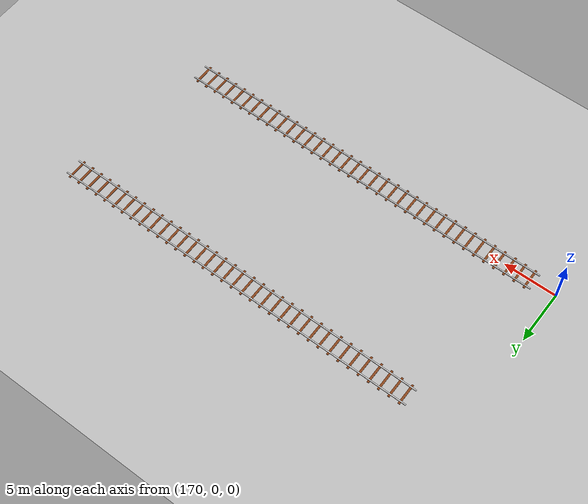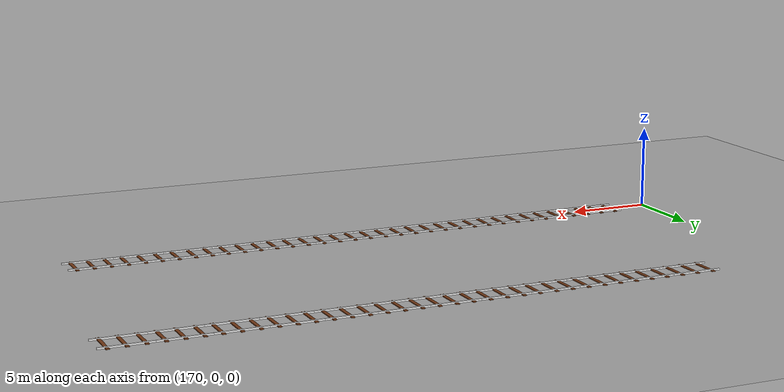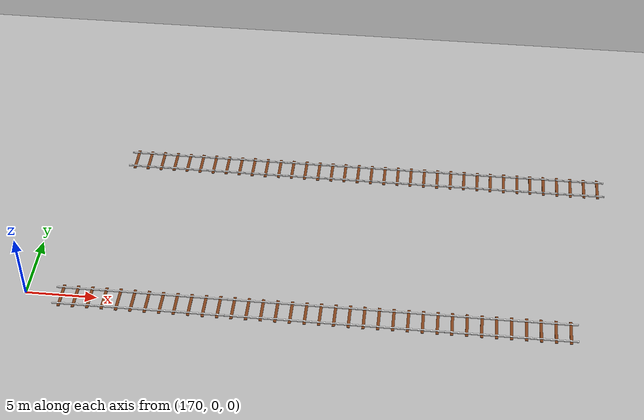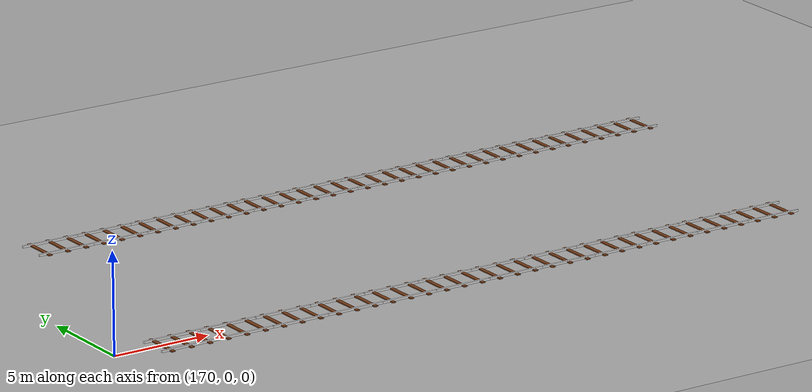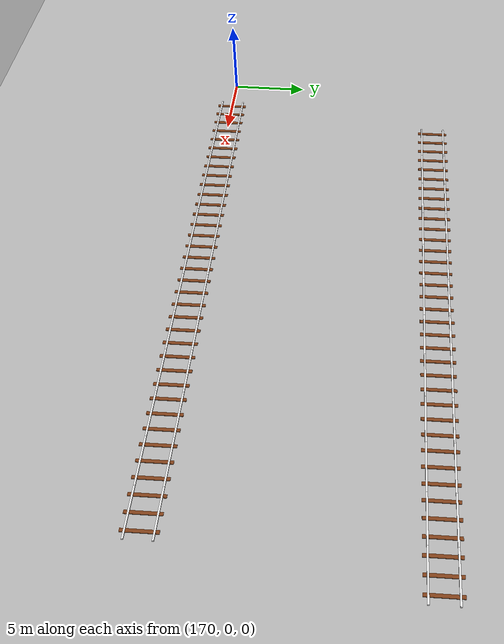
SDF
<sdf version="1.10">
 <world name="myworld">
  <model name="ground_plane">
   <static>true</static>
   <link name="link">
    <collision name="collision">
     <geometry><plane><normal>0 0 1</normal><size>1000 1000</size></plane></geometry>
    </collision>
    <visual name="visual">
     <geometry><plane><normal>0 0 1</normal><size>1000 1000</size></plane></geometry>
     <material>
      <ambient>0.699999988 0.699999988 0.699999988 1</ambient>
      <diffuse>0.699999988 0.699999988 0.699999988 1</diffuse>
     </material>
    </visual>
    <inertial>
     <mass>1</mass>
     <inertia><ixx>1</ixx><ixy>0</ixy><ixz>0</ixz><iyy>1</iyy><iyz>0</iyz><izz>1</izz></inertia>
    </inertial>
   </link>
  </model>
  <model name="rail12_37_10">
   <static>true</static>
   <pose>173.52500000000001 -0.028317800000000001 0 0 0 0</pose>
   <link name="rail_link">
    <visual name="rail_left">
     <pose>0 0.75 0.050000000000000003 0 0 0</pose>
     <geometry><box><size>3 0.10000000000000001 0.10000000000000001</size></box></geometry>
     <material>
      <ambient>0.800000012 0.800000012 0.800000012 1</ambient>
      <diffuse>0.899999976 0.899999976 0.899999976 1</diffuse>
     </material>
    </visual>
    <visual name="rail_right">
     <pose>0 -0.75 0.050000000000000003 0 0 0</pose>
     <geometry><box><size>3 0.10000000000000001 0.10000000000000001</size></box></geometry>
     <material>
      <ambient>0.800000012 0.800000012 0.800000012 1</ambient>
      <diffuse>0.899999976 0.899999976 0.899999976 1</diffuse>
     </material>
    </visual>
    <visual name="traverse_1">
     <pose>1 0 0.025000000000000001 0 0 0</pose>
     <geometry><box><size>0.20000000000000001 2 0.050000000000000003</size></box></geometry>
     <material>
      <ambient>0.400000006 0.200000003 0.100000001 1</ambient>
      <diffuse>0.5 0.25 0.100000001 1</diffuse>
     </material>
    </visual>
    <visual name="traverse_2">
     <pose>0 0 0.025000000000000001 0 0 0</pose>
     <geometry><box><size>0.20000000000000001 2 0.050000000000000003</size></box></geometry>
     <material>
      <ambient>0.400000006 0.200000003 0.100000001 1</ambient>
      <diffuse>0.5 0.25 0.100000001 1</diffuse>
     </material>
    </visual>
    <visual name="traverse_3">
     <pose>-1 0 0.025000000000000001 0 0 0</pose>
     <geometry><box><size>0.20000000000000001 2 0.050000000000000003</size></box></geometry>
     <material>
      <ambient>0.400000006 0.200000003 0.100000001 1</ambient>
      <diffuse>0.5 0.25 0.100000001 1</diffuse>
     </material>
    </visual>
   </link>
  </model>
  <model name="rail12_37_11">
   <static>true</static>
   <pose>176.52600000000001 -0.0236508 0 0 0 0</pose>
   <link name="rail_link">
    <visual name="rail_left">
     <pose>0 0.75 0.050000000000000003 0 0 0</pose>
     <geometry><box><size>3 0.10000000000000001 0.10000000000000001</size></box></geometry>
     <material>
      <ambient>0.800000012 0.800000012 0.800000012 1</ambient>
      <diffuse>0.899999976 0.899999976 0.899999976 1</diffuse>
     </material>
    </visual>
    <visual name="rail_right">
     <pose>0 -0.75 0.050000000000000003 0 0 0</pose>
     <geometry><box><size>3 0.10000000000000001 0.10000000000000001</size></box></geometry>
     <material>
      <ambient>0.800000012 0.800000012 0.800000012 1</ambient>
      <diffuse>0.899999976 0.899999976 0.899999976 1</diffuse>
     </material>
    </visual>
    <visual name="traverse_1">
     <pose>1 0 0.025000000000000001 0 0 0</pose>
     <geometry><box><size>0.20000000000000001 2 0.050000000000000003</size></box></geometry>
     <material>
      <ambient>0.400000006 0.200000003 0.100000001 1</ambient>
      <diffuse>0.5 0.25 0.100000001 1</diffuse>
     </material>
    </visual>
    <visual name="traverse_2">
     <pose>0 0 0.025000000000000001 0 0 0</pose>
     <geometry><box><size>0.20000000000000001 2 0.050000000000000003</size></box></geometry>
     <material>
      <ambient>0.400000006 0.200000003 0.100000001 1</ambient>
      <diffuse>0.5 0.25 0.100000001 1</diffuse>
     </material>
    </visual>
    <visual name="traverse_3">
     <pose>-1 0 0.025000000000000001 0 0 0</pose>
     <geometry><box><size>0.20000000000000001 2 0.050000000000000003</size></box></geometry>
     <material>
      <ambient>0.400000006 0.200000003 0.100000001 1</ambient>
      <diffuse>0.5 0.25 0.100000001 1</diffuse>
     </material>
    </visual>
   </link>
  </model>
  <model name="rail12_37_12">
   <static>true</static>
   <pose>179.524 -0.027465199999999999 0 0 0 0</pose>
   <link name="rail_link">
    <visual name="rail_left">
     <pose>0 0.75 0.050000000000000003 0 0 0</pose>
     <geometry><box><size>3 0.10000000000000001 0.10000000000000001</size></box></geometry>
     <material>
      <ambient>0.800000012 0.800000012 0.800000012 1</ambient>
      <diffuse>0.899999976 0.899999976 0.899999976 1</diffuse>
     </material>
    </visual>
    <visual name="rail_right">
     <pose>0 -0.75 0.050000000000000003 0 0 0</pose>
     <geometry><box><size>3 0.10000000000000001 0.10000000000000001</size></box></geometry>
     <material>
      <ambient>0.800000012 0.800000012 0.800000012 1</ambient>
      <diffuse>0.899999976 0.899999976 0.899999976 1</diffuse>
     </material>
    </visual>
    <visual name="traverse_1">
     <pose>1 0 0.025000000000000001 0 0 0</pose>
     <geometry><box><size>0.20000000000000001 2 0.050000000000000003</size></box></geometry>
     <material>
      <ambient>0.400000006 0.200000003 0.100000001 1</ambient>
      <diffuse>0.5 0.25 0.100000001 1</diffuse>
     </material>
    </visual>
    <visual name="traverse_2">
     <pose>0 0 0.025000000000000001 0 0 0</pose>
     <geometry><box><size>0.20000000000000001 2 0.050000000000000003</size></box></geometry>
     <material>
      <ambient>0.400000006 0.200000003 0.100000001 1</ambient>
      <diffuse>0.5 0.25 0.100000001 1</diffuse>
     </material>
    </visual>
    <visual name="traverse_3">
     <pose>-1 0 0.025000000000000001 0 0 0</pose>
     <geometry><box><size>0.20000000000000001 2 0.050000000000000003</size></box></geometry>
     <material>
      <ambient>0.400000006 0.200000003 0.100000001 1</ambient>
      <diffuse>0.5 0.25 0.100000001 1</diffuse>
     </material>
    </visual>
   </link>
  </model>
  <model name="rail12_37_13">
   <static>true</static>
   <pose>182.52000000000001 -0.028889000000000001 0 0 0 0</pose>
   <link name="rail_link">
    <visual name="rail_left">
     <pose>0 0.75 0.050000000000000003 0 0 0</pose>
     <geometry><box><size>3 0.10000000000000001 0.10000000000000001</size></box></geometry>
     <material>
      <ambient>0.800000012 0.800000012 0.800000012 1</ambient>
      <diffuse>0.899999976 0.899999976 0.899999976 1</diffuse>
     </material>
    </visual>
    <visual name="rail_right">
     <pose>0 -0.75 0.050000000000000003 0 0 0</pose>
     <geometry><box><size>3 0.10000000000000001 0.10000000000000001</size></box></geometry>
     <material>
      <ambient>0.800000012 0.800000012 0.800000012 1</ambient>
      <diffuse>0.899999976 0.899999976 0.899999976 1</diffuse>
     </material>
    </visual>
    <visual name="traverse_1">
     <pose>1 0 0.025000000000000001 0 0 0</pose>
     <geometry><box><size>0.20000000000000001 2 0.050000000000000003</size></box></geometry>
     <material>
      <ambient>0.400000006 0.200000003 0.100000001 1</ambient>
      <diffuse>0.5 0.25 0.100000001 1</diffuse>
     </material>
    </visual>
    <visual name="traverse_2">
     <pose>0 0 0.025000000000000001 0 0 0</pose>
     <geometry><box><size>0.20000000000000001 2 0.050000000000000003</size></box></geometry>
     <material>
      <ambient>0.400000006 0.200000003 0.100000001 1</ambient>
      <diffuse>0.5 0.25 0.100000001 1</diffuse>
     </material>
    </visual>
    <visual name="traverse_3">
     <pose>-1 0 0.025000000000000001 0 0 0</pose>
     <geometry><box><size>0.20000000000000001 2 0.050000000000000003</size></box></geometry>
     <material>
      <ambient>0.400000006 0.200000003 0.100000001 1</ambient>
      <diffuse>0.5 0.25 0.100000001 1</diffuse>
     </material>
    </visual>
   </link>
  </model>
  <model name="rail12_37_14">
   <static>true</static>
   <pose>185.506 -0.029607100000000001 0 0 0 0</pose>
   <link name="rail_link">
    <visual name="rail_left">
     <pose>0 0.75 0.050000000000000003 0 0 0</pose>
     <geometry><box><size>3 0.10000000000000001 0.10000000000000001</size></box></geometry>
     <material>
      <ambient>0.800000012 0.800000012 0.800000012 1</ambient>
      <diffuse>0.899999976 0.899999976 0.899999976 1</diffuse>
     </material>
    </visual>
    <visual name="rail_right">
     <pose>0 -0.75 0.050000000000000003 0 0 0</pose>
     <geometry><box><size>3 0.10000000000000001 0.10000000000000001</size></box></geometry>
     <material>
      <ambient>0.800000012 0.800000012 0.800000012 1</ambient>
      <diffuse>0.899999976 0.899999976 0.899999976 1</diffuse>
     </material>
    </visual>
    <visual name="traverse_1">
     <pose>1 0 0.025000000000000001 0 0 0</pose>
     <geometry><box><size>0.20000000000000001 2 0.050000000000000003</size></box></geometry>
     <material>
      <ambient>0.400000006 0.200000003 0.100000001 1</ambient>
      <diffuse>0.5 0.25 0.100000001 1</diffuse>
     </material>
    </visual>
    <visual name="traverse_2">
     <pose>0 0 0.025000000000000001 0 0 0</pose>
     <geometry><box><size>0.20000000000000001 2 0.050000000000000003</size></box></geometry>
     <material>
      <ambient>0.400000006 0.200000003 0.100000001 1</ambient>
      <diffuse>0.5 0.25 0.100000001 1</diffuse>
     </material>
    </visual>
    <visual name="traverse_3">
     <pose>-1 0 0.025000000000000001 0 0 0</pose>
     <geometry><box><size>0.20000000000000001 2 0.050000000000000003</size></box></geometry>
     <material>
      <ambient>0.400000006 0.200000003 0.100000001 1</ambient>
      <diffuse>0.5 0.25 0.100000001 1</diffuse>
     </material>
    </visual>
   </link>
  </model>
  <model name="rail12_37_15">
   <static>true</static>
   <pose>188.50800000000001 -0.028596799999999999 0 0 0 0</pose>
   <link name="rail_link">
    <visual name="rail_left">
     <pose>0 0.75 0.050000000000000003 0 0 0</pose>
     <geometry><box><size>3 0.10000000000000001 0.10000000000000001</size></box></geometry>
     <material>
      <ambient>0.800000012 0.800000012 0.800000012 1</ambient>
      <diffuse>0.899999976 0.899999976 0.899999976 1</diffuse>
     </material>
    </visual>
    <visual name="rail_right">
     <pose>0 -0.75 0.050000000000000003 0 0 0</pose>
     <geometry><box><size>3 0.10000000000000001 0.10000000000000001</size></box></geometry>
     <material>
      <ambient>0.800000012 0.800000012 0.800000012 1</ambient>
      <diffuse>0.899999976 0.899999976 0.899999976 1</diffuse>
     </material>
    </visual>
    <visual name="traverse_1">
     <pose>1 0 0.025000000000000001 0 0 0</pose>
     <geometry><box><size>0.20000000000000001 2 0.050000000000000003</size></box></geometry>
     <material>
      <ambient>0.400000006 0.200000003 0.100000001 1</ambient>
      <diffuse>0.5 0.25 0.100000001 1</diffuse>
     </material>
    </visual>
    <visual name="traverse_2">
     <pose>0 0 0.025000000000000001 0 0 0</pose>
     <geometry><box><size>0.20000000000000001 2 0.050000000000000003</size></box></geometry>
     <material>
      <ambient>0.400000006 0.200000003 0.100000001 1</ambient>
      <diffuse>0.5 0.25 0.100000001 1</diffuse>
     </material>
    </visual>
    <visual name="traverse_3">
     <pose>-1 0 0.025000000000000001 0 0 0</pose>
     <geometry><box><size>0.20000000000000001 2 0.050000000000000003</size></box></geometry>
     <material>
      <ambient>0.400000006 0.200000003 0.100000001 1</ambient>
      <diffuse>0.5 0.25 0.100000001 1</diffuse>
     </material>
    </visual>
   </link>
  </model>
  <model name="rail12_37_16">
   <static>true</static>
   <pose>191.50700000000001 -0.0270799 0 0 0 0</pose>
   <link name="rail_link">
    <visual name="rail_left">
     <pose>0 0.75 0.050000000000000003 0 0 0</pose>
     <geometry><box><size>3 0.10000000000000001 0.10000000000000001</size></box></geometry>
     <material>
      <ambient>0.800000012 0.800000012 0.800000012 1</ambient>
      <diffuse>0.899999976 0.899999976 0.899999976 1</diffuse>
     </material>
    </visual>
    <visual name="rail_right">
     <pose>0 -0.75 0.050000000000000003 0 0 0</pose>
     <geometry><box><size>3 0.10000000000000001 0.10000000000000001</size></box></geometry>
     <material>
      <ambient>0.800000012 0.800000012 0.800000012 1</ambient>
      <diffuse>0.899999976 0.899999976 0.899999976 1</diffuse>
     </material>
    </visual>
    <visual name="traverse_1">
     <pose>1 0 0.025000000000000001 0 0 0</pose>
     <geometry><box><size>0.20000000000000001 2 0.050000000000000003</size></box></geometry>
     <material>
      <ambient>0.400000006 0.200000003 0.100000001 1</ambient>
      <diffuse>0.5 0.25 0.100000001 1</diffuse>
     </material>
    </visual>
    <visual name="traverse_2">
     <pose>0 0 0.025000000000000001 0 0 0</pose>
     <geometry><box><size>0.20000000000000001 2 0.050000000000000003</size></box></geometry>
     <material>
      <ambient>0.400000006 0.200000003 0.100000001 1</ambient>
      <diffuse>0.5 0.25 0.100000001 1</diffuse>
     </material>
    </visual>
    <visual name="traverse_3">
     <pose>-1 0 0.025000000000000001 0 0 0</pose>
     <geometry><box><size>0.20000000000000001 2 0.050000000000000003</size></box></geometry>
     <material>
      <ambient>0.400000006 0.200000003 0.100000001 1</ambient>
      <diffuse>0.5 0.25 0.100000001 1</diffuse>
     </material>
    </visual>
   </link>
  </model>
  <model name="rail12_37_17">
   <static>true</static>
   <pose>194.512 -0.0290691 0 0 0 0</pose>
   <link name="rail_link">
    <visual name="rail_left">
     <pose>0 0.75 0.050000000000000003 0 0 0</pose>
     <geometry><box><size>3 0.10000000000000001 0.10000000000000001</size></box></geometry>
     <material>
      <ambient>0.800000012 0.800000012 0.800000012 1</ambient>
      <diffuse>0.899999976 0.899999976 0.899999976 1</diffuse>
     </material>
    </visual>
    <visual name="rail_right">
     <pose>0 -0.75 0.050000000000000003 0 0 0</pose>
     <geometry><box><size>3 0.10000000000000001 0.10000000000000001</size></box></geometry>
     <material>
      <ambient>0.800000012 0.800000012 0.800000012 1</ambient>
      <diffuse>0.899999976 0.899999976 0.899999976 1</diffuse>
     </material>
    </visual>
    <visual name="traverse_1">
     <pose>1 0 0.025000000000000001 0 0 0</pose>
     <geometry><box><size>0.20000000000000001 2 0.050000000000000003</size></box></geometry>
     <material>
      <ambient>0.400000006 0.200000003 0.100000001 1</ambient>
      <diffuse>0.5 0.25 0.100000001 1</diffuse>
     </material>
    </visual>
    <visual name="traverse_2">
     <pose>0 0 0.025000000000000001 0 0 0</pose>
     <geometry><box><size>0.20000000000000001 2 0.050000000000000003</size></box></geometry>
     <material>
      <ambient>0.400000006 0.200000003 0.100000001 1</ambient>
      <diffuse>0.5 0.25 0.100000001 1</diffuse>
     </material>
    </visual>
    <visual name="traverse_3">
     <pose>-1 0 0.025000000000000001 0 0 0</pose>
     <geometry><box><size>0.20000000000000001 2 0.050000000000000003</size></box></geometry>
     <material>
      <ambient>0.400000006 0.200000003 0.100000001 1</ambient>
      <diffuse>0.5 0.25 0.100000001 1</diffuse>
     </material>
    </visual>
   </link>
  </model>
  <model name="rail12_37_18">
   <static>true</static>
   <pose>197.51300000000001 -0.025590499999999999 0 0 0 0</pose>
   <link name="rail_link">
    <visual name="rail_left">
     <pose>0 0.75 0.050000000000000003 0 0 0</pose>
     <geometry><box><size>3 0.10000000000000001 0.10000000000000001</size></box></geometry>
     <material>
      <ambient>0.800000012 0.800000012 0.800000012 1</ambient>
      <diffuse>0.899999976 0.899999976 0.899999976 1</diffuse>
     </material>
    </visual>
    <visual name="rail_right">
     <pose>0 -0.75 0.050000000000000003 0 0 0</pose>
     <geometry><box><size>3 0.10000000000000001 0.10000000000000001</size></box></geometry>
     <material>
      <ambient>0.800000012 0.800000012 0.800000012 1</ambient>
      <diffuse>0.899999976 0.899999976 0.899999976 1</diffuse>
     </material>
    </visual>
    <visual name="traverse_1">
     <pose>1 0 0.025000000000000001 0 0 0</pose>
     <geometry><box><size>0.20000000000000001 2 0.050000000000000003</size></box></geometry>
     <material>
      <ambient>0.400000006 0.200000003 0.100000001 1</ambient>
      <diffuse>0.5 0.25 0.100000001 1</diffuse>
     </material>
    </visual>
    <visual name="traverse_2">
     <pose>0 0 0.025000000000000001 0 0 0</pose>
     <geometry><box><size>0.20000000000000001 2 0.050000000000000003</size></box></geometry>
     <material>
      <ambient>0.400000006 0.200000003 0.100000001 1</ambient>
      <diffuse>0.5 0.25 0.100000001 1</diffuse>
     </material>
    </visual>
    <visual name="traverse_3">
     <pose>-1 0 0.025000000000000001 0 0 0</pose>
     <geometry><box><size>0.20000000000000001 2 0.050000000000000003</size></box></geometry>
     <material>
      <ambient>0.400000006 0.200000003 0.100000001 1</ambient>
      <diffuse>0.5 0.25 0.100000001 1</diffuse>
     </material>
    </visual>
   </link>
  </model>
  <model name="rail12_37_19">
   <static>true</static>
   <pose>200.49799999999999 -0.024401900000000001 0 0 0 0</pose>
   <link name="rail_link">
    <visual name="rail_left">
     <pose>0 0.75 0.050000000000000003 0 0 0</pose>
     <geometry><box><size>3 0.10000000000000001 0.10000000000000001</size></box></geometry>
     <material>
      <ambient>0.800000012 0.800000012 0.800000012 1</ambient>
      <diffuse>0.899999976 0.899999976 0.899999976 1</diffuse>
     </material>
    </visual>
    <visual name="rail_right">
     <pose>0 -0.75 0.050000000000000003 0 0 0</pose>
     <geometry><box><size>3 0.10000000000000001 0.10000000000000001</size></box></geometry>
     <material>
      <ambient>0.800000012 0.800000012 0.800000012 1</ambient>
      <diffuse>0.899999976 0.899999976 0.899999976 1</diffuse>
     </material>
    </visual>
    <visual name="traverse_1">
     <pose>1 0 0.025000000000000001 0 0 0</pose>
     <geometry><box><size>0.20000000000000001 2 0.050000000000000003</size></box></geometry>
     <material>
      <ambient>0.400000006 0.200000003 0.100000001 1</ambient>
      <diffuse>0.5 0.25 0.100000001 1</diffuse>
     </material>
    </visual>
    <visual name="traverse_2">
     <pose>0 0 0.025000000000000001 0 0 0</pose>
     <geometry><box><size>0.20000000000000001 2 0.050000000000000003</size></box></geometry>
     <material>
      <ambient>0.400000006 0.200000003 0.100000001 1</ambient>
      <diffuse>0.5 0.25 0.100000001 1</diffuse>
     </material>
    </visual>
    <visual name="traverse_3">
     <pose>-1 0 0.025000000000000001 0 0 0</pose>
     <geometry><box><size>0.20000000000000001 2 0.050000000000000003</size></box></geometry>
     <material>
      <ambient>0.400000006 0.200000003 0.100000001 1</ambient>
      <diffuse>0.5 0.25 0.100000001 1</diffuse>
     </material>
    </visual>
   </link>
  </model>
  <model name="rail12_37_20">
   <static>true</static>
   <pose>203.49799999999999 -0.025672500000000001 0 0 0 0</pose>
   <link name="rail_link">
    <visual name="rail_left">
     <pose>0 0.75 0.050000000000000003 0 0 0</pose>
     <geometry><box><size>3 0.10000000000000001 0.10000000000000001</size></box></geometry>
     <material>
      <ambient>0.800000012 0.800000012 0.800000012 1</ambient>
      <diffuse>0.899999976 0.899999976 0.899999976 1</diffuse>
     </material>
    </visual>
    <visual name="rail_right">
     <pose>0 -0.75 0.050000000000000003 0 0 0</pose>
     <geometry><box><size>3 0.10000000000000001 0.10000000000000001</size></box></geometry>
     <material>
      <ambient>0.800000012 0.800000012 0.800000012 1</ambient>
      <diffuse>0.899999976 0.899999976 0.899999976 1</diffuse>
     </material>
    </visual>
    <visual name="traverse_1">
     <pose>1 0 0.025000000000000001 0 0 0</pose>
     <geometry><box><size>0.20000000000000001 2 0.050000000000000003</size></box></geometry>
     <material>
      <ambient>0.400000006 0.200000003 0.100000001 1</ambient>
      <diffuse>0.5 0.25 0.100000001 1</diffuse>
     </material>
    </visual>
    <visual name="traverse_2">
     <pose>0 0 0.025000000000000001 0 0 0</pose>
     <geometry><box><size>0.20000000000000001 2 0.050000000000000003</size></box></geometry>
     <material>
      <ambient>0.400000006 0.200000003 0.100000001 1</ambient>
      <diffuse>0.5 0.25 0.100000001 1</diffuse>
     </material>
    </visual>
    <visual name="traverse_3">
     <pose>-1 0 0.025000000000000001 0 0 0</pose>
     <geometry><box><size>0.20000000000000001 2 0.050000000000000003</size></box></geometry>
     <material>
      <ambient>0.400000006 0.200000003 0.100000001 1</ambient>
      <diffuse>0.5 0.25 0.100000001 1</diffuse>
     </material>
    </visual>
   </link>
  </model>
  <model name="rail12_37_21">
   <static>true</static>
   <pose>206.49199999999999 -0.026483799999999998 0 0 0 0</pose>
   <link name="rail_link">
    <visual name="rail_left">
     <pose>0 0.75 0.050000000000000003 0 0 0</pose>
     <geometry><box><size>3 0.10000000000000001 0.10000000000000001</size></box></geometry>
     <material>
      <ambient>0.800000012 0.800000012 0.800000012 1</ambient>
      <diffuse>0.899999976 0.899999976 0.899999976 1</diffuse>
     </material>
    </visual>
    <visual name="rail_right">
     <pose>0 -0.75 0.050000000000000003 0 0 0</pose>
     <geometry><box><size>3 0.10000000000000001 0.10000000000000001</size></box></geometry>
     <material>
      <ambient>0.800000012 0.800000012 0.800000012 1</ambient>
      <diffuse>0.899999976 0.899999976 0.899999976 1</diffuse>
     </material>
    </visual>
    <visual name="traverse_1">
     <pose>1 0 0.025000000000000001 0 0 0</pose>
     <geometry><box><size>0.20000000000000001 2 0.050000000000000003</size></box></geometry>
     <material>
      <ambient>0.400000006 0.200000003 0.100000001 1</ambient>
      <diffuse>0.5 0.25 0.100000001 1</diffuse>
     </material>
    </visual>
    <visual name="traverse_2">
     <pose>0 0 0.025000000000000001 0 0 0</pose>
     <geometry><box><size>0.20000000000000001 2 0.050000000000000003</size></box></geometry>
     <material>
      <ambient>0.400000006 0.200000003 0.100000001 1</ambient>
      <diffuse>0.5 0.25 0.100000001 1</diffuse>
     </material>
    </visual>
    <visual name="traverse_3">
     <pose>-1 0 0.025000000000000001 0 0 0</pose>
     <geometry><box><size>0.20000000000000001 2 0.050000000000000003</size></box></geometry>
     <material>
      <ambient>0.400000006 0.200000003 0.100000001 1</ambient>
      <diffuse>0.5 0.25 0.100000001 1</diffuse>
     </material>
    </visual>
   </link>
  </model>
  <model name="rail12_37_82">
   <static>true</static>
   <pose>175.91 14.6059900000000003 0 0 0 0</pose>
   <link name="rail_link">
    <visual name="rail_left">
     <pose>0 0.75 0.050000000000000003 0 0 0</pose>
     <geometry><box><size>3 0.10000000000000001 0.10000000000000001</size></box></geometry>
     <material>
      <ambient>0.800000012 0.800000012 0.800000012 1</ambient>
      <diffuse>0.899999976 0.899999976 0.899999976 1</diffuse>
     </material>
    </visual>
    <visual name="rail_right">
     <pose>0 -0.75 0.050000000000000003 0 0 0</pose>
     <geometry><box><size>3 0.10000000000000001 0.10000000000000001</size></box></geometry>
     <material>
      <ambient>0.800000012 0.800000012 0.800000012 1</ambient>
      <diffuse>0.899999976 0.899999976 0.899999976 1</diffuse>
     </material>
    </visual>
    <visual name="traverse_1">
     <pose>1 0 0.025000000000000001 0 0 0</pose>
     <geometry><box><size>0.20000000000000001 2 0.050000000000000003</size></box></geometry>
     <material>
      <ambient>0.400000006 0.200000003 0.100000001 1</ambient>
      <diffuse>0.5 0.25 0.100000001 1</diffuse>
     </material>
    </visual>
    <visual name="traverse_2">
     <pose>0 0 0.025000000000000001 0 0 0</pose>
     <geometry><box><size>0.20000000000000001 2 0.050000000000000003</size></box></geometry>
     <material>
      <ambient>0.400000006 0.200000003 0.100000001 1</ambient>
      <diffuse>0.5 0.25 0.100000001 1</diffuse>
     </material>
    </visual>
    <visual name="traverse_3">
     <pose>-1 0 0.025000000000000001 0 0 0</pose>
     <geometry><box><size>0.20000000000000001 2 0.050000000000000003</size></box></geometry>
     <material>
      <ambient>0.400000006 0.200000003 0.100000001 1</ambient>
      <diffuse>0.5 0.25 0.100000001 1</diffuse>
     </material>
    </visual>
   </link>
  </model>
  <model name="rail12_37_83">
   <static>true</static>
   <pose>178.911 14.6051799999999998 0 0 0 0</pose>
   <link name="rail_link">
    <visual name="rail_left">
     <pose>0 0.75 0.050000000000000003 0 0 0</pose>
     <geometry><box><size>3 0.10000000000000001 0.10000000000000001</size></box></geometry>
     <material>
      <ambient>0.800000012 0.800000012 0.800000012 1</ambient>
      <diffuse>0.899999976 0.899999976 0.899999976 1</diffuse>
     </material>
    </visual>
    <visual name="rail_right">
     <pose>0 -0.75 0.050000000000000003 0 0 0</pose>
     <geometry><box><size>3 0.10000000000000001 0.10000000000000001</size></box></geometry>
     <material>
      <ambient>0.800000012 0.800000012 0.800000012 1</ambient>
      <diffuse>0.899999976 0.899999976 0.899999976 1</diffuse>
     </material>
    </visual>
    <visual name="traverse_1">
     <pose>1 0 0.025000000000000001 0 0 0</pose>
     <geometry><box><size>0.20000000000000001 2 0.050000000000000003</size></box></geometry>
     <material>
      <ambient>0.400000006 0.200000003 0.100000001 1</ambient>
      <diffuse>0.5 0.25 0.100000001 1</diffuse>
     </material>
    </visual>
    <visual name="traverse_2">
     <pose>0 0 0.025000000000000001 0 0 0</pose>
     <geometry><box><size>0.20000000000000001 2 0.050000000000000003</size></box></geometry>
     <material>
      <ambient>0.400000006 0.200000003 0.100000001 1</ambient>
      <diffuse>0.5 0.25 0.100000001 1</diffuse>
     </material>
    </visual>
    <visual name="traverse_3">
     <pose>-1 0 0.025000000000000001 0 0 0</pose>
     <geometry><box><size>0.20000000000000001 2 0.050000000000000003</size></box></geometry>
     <material>
      <ambient>0.400000006 0.200000003 0.100000001 1</ambient>
      <diffuse>0.5 0.25 0.100000001 1</diffuse>
     </material>
    </visual>
   </link>
  </model>
  <model name="rail12_37_84">
   <static>true</static>
   <pose>181.90899999999999 14.6045400000000001 0 0 0 0</pose>
   <link name="rail_link">
    <visual name="rail_left">
     <pose>0 0.75 0.050000000000000003 0 0 0</pose>
     <geometry><box><size>3 0.10000000000000001 0.10000000000000001</size></box></geometry>
     <material>
      <ambient>0.800000012 0.800000012 0.800000012 1</ambient>
      <diffuse>0.899999976 0.899999976 0.899999976 1</diffuse>
     </material>
    </visual>
    <visual name="rail_right">
     <pose>0 -0.75 0.050000000000000003 0 0 0</pose>
     <geometry><box><size>3 0.10000000000000001 0.10000000000000001</size></box></geometry>
     <material>
      <ambient>0.800000012 0.800000012 0.800000012 1</ambient>
      <diffuse>0.899999976 0.899999976 0.899999976 1</diffuse>
     </material>
    </visual>
    <visual name="traverse_1">
     <pose>1 0 0.025000000000000001 0 0 0</pose>
     <geometry><box><size>0.20000000000000001 2 0.050000000000000003</size></box></geometry>
     <material>
      <ambient>0.400000006 0.200000003 0.100000001 1</ambient>
      <diffuse>0.5 0.25 0.100000001 1</diffuse>
     </material>
    </visual>
    <visual name="traverse_2">
     <pose>0 0 0.025000000000000001 0 0 0</pose>
     <geometry><box><size>0.20000000000000001 2 0.050000000000000003</size></box></geometry>
     <material>
      <ambient>0.400000006 0.200000003 0.100000001 1</ambient>
      <diffuse>0.5 0.25 0.100000001 1</diffuse>
     </material>
    </visual>
    <visual name="traverse_3">
     <pose>-1 0 0.025000000000000001 0 0 0</pose>
     <geometry><box><size>0.20000000000000001 2 0.050000000000000003</size></box></geometry>
     <material>
      <ambient>0.400000006 0.200000003 0.100000001 1</ambient>
      <diffuse>0.5 0.25 0.100000001 1</diffuse>
     </material>
    </visual>
   </link>
  </model>
  <model name="rail12_37_85">
   <static>true</static>
   <pose>184.90199999999999 14.6020300000000001 0 0 0 0</pose>
   <link name="rail_link">
    <visual name="rail_left">
     <pose>0 0.75 0.050000000000000003 0 0 0</pose>
     <geometry><box><size>3 0.10000000000000001 0.10000000000000001</size></box></geometry>
     <material>
      <ambient>0.800000012 0.800000012 0.800000012 1</ambient>
      <diffuse>0.899999976 0.899999976 0.899999976 1</diffuse>
     </material>
    </visual>
    <visual name="rail_right">
     <pose>0 -0.75 0.050000000000000003 0 0 0</pose>
     <geometry><box><size>3 0.10000000000000001 0.10000000000000001</size></box></geometry>
     <material>
      <ambient>0.800000012 0.800000012 0.800000012 1</ambient>
      <diffuse>0.899999976 0.899999976 0.899999976 1</diffuse>
     </material>
    </visual>
    <visual name="traverse_1">
     <pose>1 0 0.025000000000000001 0 0 0</pose>
     <geometry><box><size>0.20000000000000001 2 0.050000000000000003</size></box></geometry>
     <material>
      <ambient>0.400000006 0.200000003 0.100000001 1</ambient>
      <diffuse>0.5 0.25 0.100000001 1</diffuse>
     </material>
    </visual>
    <visual name="traverse_2">
     <pose>0 0 0.025000000000000001 0 0 0</pose>
     <geometry><box><size>0.20000000000000001 2 0.050000000000000003</size></box></geometry>
     <material>
      <ambient>0.400000006 0.200000003 0.100000001 1</ambient>
      <diffuse>0.5 0.25 0.100000001 1</diffuse>
     </material>
    </visual>
    <visual name="traverse_3">
     <pose>-1 0 0.025000000000000001 0 0 0</pose>
     <geometry><box><size>0.20000000000000001 2 0.050000000000000003</size></box></geometry>
     <material>
      <ambient>0.400000006 0.200000003 0.100000001 1</ambient>
      <diffuse>0.5 0.25 0.100000001 1</diffuse>
     </material>
    </visual>
   </link>
  </model>
  <model name="rail12_37_86">
   <static>true</static>
   <pose>187.89099999999999 14.6024500000000002 0 0 0 0</pose>
   <link name="rail_link">
    <visual name="rail_left">
     <pose>0 0.75 0.050000000000000003 0 0 0</pose>
     <geometry><box><size>3 0.10000000000000001 0.10000000000000001</size></box></geometry>
     <material>
      <ambient>0.800000012 0.800000012 0.800000012 1</ambient>
      <diffuse>0.899999976 0.899999976 0.899999976 1</diffuse>
     </material>
    </visual>
    <visual name="rail_right">
     <pose>0 -0.75 0.050000000000000003 0 0 0</pose>
     <geometry><box><size>3 0.10000000000000001 0.10000000000000001</size></box></geometry>
     <material>
      <ambient>0.800000012 0.800000012 0.800000012 1</ambient>
      <diffuse>0.899999976 0.899999976 0.899999976 1</diffuse>
     </material>
    </visual>
    <visual name="traverse_1">
     <pose>1 0 0.025000000000000001 0 0 0</pose>
     <geometry><box><size>0.20000000000000001 2 0.050000000000000003</size></box></geometry>
     <material>
      <ambient>0.400000006 0.200000003 0.100000001 1</ambient>
      <diffuse>0.5 0.25 0.100000001 1</diffuse>
     </material>
    </visual>
    <visual name="traverse_2">
     <pose>0 0 0.025000000000000001 0 0 0</pose>
     <geometry><box><size>0.20000000000000001 2 0.050000000000000003</size></box></geometry>
     <material>
      <ambient>0.400000006 0.200000003 0.100000001 1</ambient>
      <diffuse>0.5 0.25 0.100000001 1</diffuse>
     </material>
    </visual>
    <visual name="traverse_3">
     <pose>-1 0 0.025000000000000001 0 0 0</pose>
     <geometry><box><size>0.20000000000000001 2 0.050000000000000003</size></box></geometry>
     <material>
      <ambient>0.400000006 0.200000003 0.100000001 1</ambient>
      <diffuse>0.5 0.25 0.100000001 1</diffuse>
     </material>
    </visual>
   </link>
  </model>
  <model name="rail12_37_87">
   <static>true</static>
   <pose>190.88499999999999 14.6016599999999999 0 0 0 0</pose>
   <link name="rail_link">
    <visual name="rail_left">
     <pose>0 0.75 0.050000000000000003 0 0 0</pose>
     <geometry><box><size>3 0.10000000000000001 0.10000000000000001</size></box></geometry>
     <material>
      <ambient>0.800000012 0.800000012 0.800000012 1</ambient>
      <diffuse>0.899999976 0.899999976 0.899999976 1</diffuse>
     </material>
    </visual>
    <visual name="rail_right">
     <pose>0 -0.75 0.050000000000000003 0 0 0</pose>
     <geometry><box><size>3 0.10000000000000001 0.10000000000000001</size></box></geometry>
     <material>
      <ambient>0.800000012 0.800000012 0.800000012 1</ambient>
      <diffuse>0.899999976 0.899999976 0.899999976 1</diffuse>
     </material>
    </visual>
    <visual name="traverse_1">
     <pose>1 0 0.025000000000000001 0 0 0</pose>
     <geometry><box><size>0.20000000000000001 2 0.050000000000000003</size></box></geometry>
     <material>
      <ambient>0.400000006 0.200000003 0.100000001 1</ambient>
      <diffuse>0.5 0.25 0.100000001 1</diffuse>
     </material>
    </visual>
    <visual name="traverse_2">
     <pose>0 0 0.025000000000000001 0 0 0</pose>
     <geometry><box><size>0.20000000000000001 2 0.050000000000000003</size></box></geometry>
     <material>
      <ambient>0.400000006 0.200000003 0.100000001 1</ambient>
      <diffuse>0.5 0.25 0.100000001 1</diffuse>
     </material>
    </visual>
    <visual name="traverse_3">
     <pose>-1 0 0.025000000000000001 0 0 0</pose>
     <geometry><box><size>0.20000000000000001 2 0.050000000000000003</size></box></geometry>
     <material>
      <ambient>0.400000006 0.200000003 0.100000001 1</ambient>
      <diffuse>0.5 0.25 0.100000001 1</diffuse>
     </material>
    </visual>
   </link>
  </model>
  <model name="rail12_37_88">
   <static>true</static>
   <pose>193.88499999999999 14.6042100000000001 0 0 0 0</pose>
   <link name="rail_link">
    <visual name="rail_left">
     <pose>0 0.75 0.050000000000000003 0 0 0</pose>
     <geometry><box><size>3 0.10000000000000001 0.10000000000000001</size></box></geometry>
     <material>
      <ambient>0.800000012 0.800000012 0.800000012 1</ambient>
      <diffuse>0.899999976 0.899999976 0.899999976 1</diffuse>
     </material>
    </visual>
    <visual name="rail_right">
     <pose>0 -0.75 0.050000000000000003 0 0 0</pose>
     <geometry><box><size>3 0.10000000000000001 0.10000000000000001</size></box></geometry>
     <material>
      <ambient>0.800000012 0.800000012 0.800000012 1</ambient>
      <diffuse>0.899999976 0.899999976 0.899999976 1</diffuse>
     </material>
    </visual>
    <visual name="traverse_1">
     <pose>1 0 0.025000000000000001 0 0 0</pose>
     <geometry><box><size>0.20000000000000001 2 0.050000000000000003</size></box></geometry>
     <material>
      <ambient>0.400000006 0.200000003 0.100000001 1</ambient>
      <diffuse>0.5 0.25 0.100000001 1</diffuse>
     </material>
    </visual>
    <visual name="traverse_2">
     <pose>0 0 0.025000000000000001 0 0 0</pose>
     <geometry><box><size>0.20000000000000001 2 0.050000000000000003</size></box></geometry>
     <material>
      <ambient>0.400000006 0.200000003 0.100000001 1</ambient>
      <diffuse>0.5 0.25 0.100000001 1</diffuse>
     </material>
    </visual>
    <visual name="traverse_3">
     <pose>-1 0 0.025000000000000001 0 0 0</pose>
     <geometry><box><size>0.20000000000000001 2 0.050000000000000003</size></box></geometry>
     <material>
      <ambient>0.400000006 0.200000003 0.100000001 1</ambient>
      <diffuse>0.5 0.25 0.100000001 1</diffuse>
     </material>
    </visual>
   </link>
  </model>
  <model name="rail12_37_89">
   <static>true</static>
   <pose>196.869 14.6058500000000002 0 0 0 0</pose>
   <link name="rail_link">
    <visual name="rail_left">
     <pose>0 0.75 0.050000000000000003 0 0 0</pose>
     <geometry><box><size>3 0.10000000000000001 0.10000000000000001</size></box></geometry>
     <material>
      <ambient>0.800000012 0.800000012 0.800000012 1</ambient>
      <diffuse>0.899999976 0.899999976 0.899999976 1</diffuse>
     </material>
    </visual>
    <visual name="rail_right">
     <pose>0 -0.75 0.050000000000000003 0 0 0</pose>
     <geometry><box><size>3 0.10000000000000001 0.10000000000000001</size></box></geometry>
     <material>
      <ambient>0.800000012 0.800000012 0.800000012 1</ambient>
      <diffuse>0.899999976 0.899999976 0.899999976 1</diffuse>
     </material>
    </visual>
    <visual name="traverse_1">
     <pose>1 0 0.025000000000000001 0 0 0</pose>
     <geometry><box><size>0.20000000000000001 2 0.050000000000000003</size></box></geometry>
     <material>
      <ambient>0.400000006 0.200000003 0.100000001 1</ambient>
      <diffuse>0.5 0.25 0.100000001 1</diffuse>
     </material>
    </visual>
    <visual name="traverse_2">
     <pose>0 0 0.025000000000000001 0 0 0</pose>
     <geometry><box><size>0.20000000000000001 2 0.050000000000000003</size></box></geometry>
     <material>
      <ambient>0.400000006 0.200000003 0.100000001 1</ambient>
      <diffuse>0.5 0.25 0.100000001 1</diffuse>
     </material>
    </visual>
    <visual name="traverse_3">
     <pose>-1 0 0.025000000000000001 0 0 0</pose>
     <geometry><box><size>0.20000000000000001 2 0.050000000000000003</size></box></geometry>
     <material>
      <ambient>0.400000006 0.200000003 0.100000001 1</ambient>
      <diffuse>0.5 0.25 0.100000001 1</diffuse>
     </material>
    </visual>
   </link>
  </model>
  <model name="rail12_37_90">
   <static>true</static>
   <pose>199.86799999999999 14.6057699999999997 0 0 0 0</pose>
   <link name="rail_link">
    <visual name="rail_left">
     <pose>0 0.75 0.050000000000000003 0 0 0</pose>
     <geometry><box><size>3 0.10000000000000001 0.10000000000000001</size></box></geometry>
     <material>
      <ambient>0.800000012 0.800000012 0.800000012 1</ambient>
      <diffuse>0.899999976 0.899999976 0.899999976 1</diffuse>
     </material>
    </visual>
    <visual name="rail_right">
     <pose>0 -0.75 0.050000000000000003 0 0 0</pose>
     <geometry><box><size>3 0.10000000000000001 0.10000000000000001</size></box></geometry>
     <material>
      <ambient>0.800000012 0.800000012 0.800000012 1</ambient>
      <diffuse>0.899999976 0.899999976 0.899999976 1</diffuse>
     </material>
    </visual>
    <visual name="traverse_1">
     <pose>1 0 0.025000000000000001 0 0 0</pose>
     <geometry><box><size>0.20000000000000001 2 0.050000000000000003</size></box></geometry>
     <material>
      <ambient>0.400000006 0.200000003 0.100000001 1</ambient>
      <diffuse>0.5 0.25 0.100000001 1</diffuse>
     </material>
    </visual>
    <visual name="traverse_2">
     <pose>0 0 0.025000000000000001 0 0 0</pose>
     <geometry><box><size>0.20000000000000001 2 0.050000000000000003</size></box></geometry>
     <material>
      <ambient>0.400000006 0.200000003 0.100000001 1</ambient>
      <diffuse>0.5 0.25 0.100000001 1</diffuse>
     </material>
    </visual>
    <visual name="traverse_3">
     <pose>-1 0 0.025000000000000001 0 0 0</pose>
     <geometry><box><size>0.20000000000000001 2 0.050000000000000003</size></box></geometry>
     <material>
      <ambient>0.400000006 0.200000003 0.100000001 1</ambient>
      <diffuse>0.5 0.25 0.100000001 1</diffuse>
     </material>
    </visual>
   </link>
  </model>
  <model name="rail12_37_91">
   <static>true</static>
   <pose>202.85300000000001 14.6057100000000002 0 0 0 0</pose>
   <link name="rail_link">
    <visual name="rail_left">
     <pose>0 0.75 0.050000000000000003 0 0 0</pose>
     <geometry><box><size>3 0.10000000000000001 0.10000000000000001</size></box></geometry>
     <material>
      <ambient>0.800000012 0.800000012 0.800000012 1</ambient>
      <diffuse>0.899999976 0.899999976 0.899999976 1</diffuse>
     </material>
    </visual>
    <visual name="rail_right">
     <pose>0 -0.75 0.050000000000000003 0 0 0</pose>
     <geometry><box><size>3 0.10000000000000001 0.10000000000000001</size></box></geometry>
     <material>
      <ambient>0.800000012 0.800000012 0.800000012 1</ambient>
      <diffuse>0.899999976 0.899999976 0.899999976 1</diffuse>
     </material>
    </visual>
    <visual name="traverse_1">
     <pose>1 0 0.025000000000000001 0 0 0</pose>
     <geometry><box><size>0.20000000000000001 2 0.050000000000000003</size></box></geometry>
     <material>
      <ambient>0.400000006 0.200000003 0.100000001 1</ambient>
      <diffuse>0.5 0.25 0.100000001 1</diffuse>
     </material>
    </visual>
    <visual name="traverse_2">
     <pose>0 0 0.025000000000000001 0 0 0</pose>
     <geometry><box><size>0.20000000000000001 2 0.050000000000000003</size></box></geometry>
     <material>
      <ambient>0.400000006 0.200000003 0.100000001 1</ambient>
      <diffuse>0.5 0.25 0.100000001 1</diffuse>
     </material>
    </visual>
    <visual name="traverse_3">
     <pose>-1 0 0.025000000000000001 0 0 0</pose>
     <geometry><box><size>0.20000000000000001 2 0.050000000000000003</size></box></geometry>
     <material>
      <ambient>0.400000006 0.200000003 0.100000001 1</ambient>
      <diffuse>0.5 0.25 0.100000001 1</diffuse>
     </material>
    </visual>
   </link>
  </model>
  <model name="rail12_37_92">
   <static>true</static>
   <pose>205.81899999999999 14.6104799999999999 0 0 0 0</pose>
   <link name="rail_link">
    <visual name="rail_left">
     <pose>0 0.75 0.050000000000000003 0 0 0</pose>
     <geometry><box><size>3 0.10000000000000001 0.10000000000000001</size></box></geometry>
     <material>
      <ambient>0.800000012 0.800000012 0.800000012 1</ambient>
      <diffuse>0.899999976 0.899999976 0.899999976 1</diffuse>
     </material>
    </visual>
    <visual name="rail_right">
     <pose>0 -0.75 0.050000000000000003 0 0 0</pose>
     <geometry><box><size>3 0.10000000000000001 0.10000000000000001</size></box></geometry>
     <material>
      <ambient>0.800000012 0.800000012 0.800000012 1</ambient>
      <diffuse>0.899999976 0.899999976 0.899999976 1</diffuse>
     </material>
    </visual>
    <visual name="traverse_1">
     <pose>1 0 0.025000000000000001 0 0 0</pose>
     <geometry><box><size>0.20000000000000001 2 0.050000000000000003</size></box></geometry>
     <material>
      <ambient>0.400000006 0.200000003 0.100000001 1</ambient>
      <diffuse>0.5 0.25 0.100000001 1</diffuse>
     </material>
    </visual>
    <visual name="traverse_2">
     <pose>0 0 0.025000000000000001 0 0 0</pose>
     <geometry><box><size>0.20000000000000001 2 0.050000000000000003</size></box></geometry>
     <material>
      <ambient>0.400000006 0.200000003 0.100000001 1</ambient>
      <diffuse>0.5 0.25 0.100000001 1</diffuse>
     </material>
    </visual>
    <visual name="traverse_3">
     <pose>-1 0 0.025000000000000001 0 0 0</pose>
     <geometry><box><size>0.20000000000000001 2 0.050000000000000003</size></box></geometry>
     <material>
      <ambient>0.400000006 0.200000003 0.100000001 1</ambient>
      <diffuse>0.5 0.25 0.100000001 1</diffuse>
     </material>
    </visual>
   </link>
  </model>
  <model name="rail12_37_93">
   <static>true</static>
   <pose>208.81700000000001 14.6117100000000004 0 0 0 0</pose>
   <link name="rail_link">
    <visual name="rail_left">
     <pose>0 0.75 0.050000000000000003 0 0 0</pose>
     <geometry><box><size>3 0.10000000000000001 0.10000000000000001</size></box></geometry>
     <material>
      <ambient>0.800000012 0.800000012 0.800000012 1</ambient>
      <diffuse>0.899999976 0.899999976 0.899999976 1</diffuse>
     </material>
    </visual>
    <visual name="rail_right">
     <pose>0 -0.75 0.050000000000000003 0 0 0</pose>
     <geometry><box><size>3 0.10000000000000001 0.10000000000000001</size></box></geometry>
     <material>
      <ambient>0.800000012 0.800000012 0.800000012 1</ambient>
      <diffuse>0.899999976 0.899999976 0.899999976 1</diffuse>
     </material>
    </visual>
    <visual name="traverse_1">
     <pose>1 0 0.025000000000000001 0 0 0</pose>
     <geometry><box><size>0.20000000000000001 2 0.050000000000000003</size></box></geometry>
     <material>
      <ambient>0.400000006 0.200000003 0.100000001 1</ambient>
      <diffuse>0.5 0.25 0.100000001 1</diffuse>
     </material>
    </visual>
    <visual name="traverse_2">
     <pose>0 0 0.025000000000000001 0 0 0</pose>
     <geometry><box><size>0.20000000000000001 2 0.050000000000000003</size></box></geometry>
     <material>
      <ambient>0.400000006 0.200000003 0.100000001 1</ambient>
      <diffuse>0.5 0.25 0.100000001 1</diffuse>
     </material>
    </visual>
    <visual name="traverse_3">
     <pose>-1 0 0.025000000000000001 0 0 0</pose>
     <geometry><box><size>0.20000000000000001 2 0.050000000000000003</size></box></geometry>
     <material>
      <ambient>0.400000006 0.200000003 0.100000001 1</ambient>
      <diffuse>0.5 0.25 0.100000001 1</diffuse>
     </material>
    </visual>
   </link>
  </model>
 </world>
</sdf>
